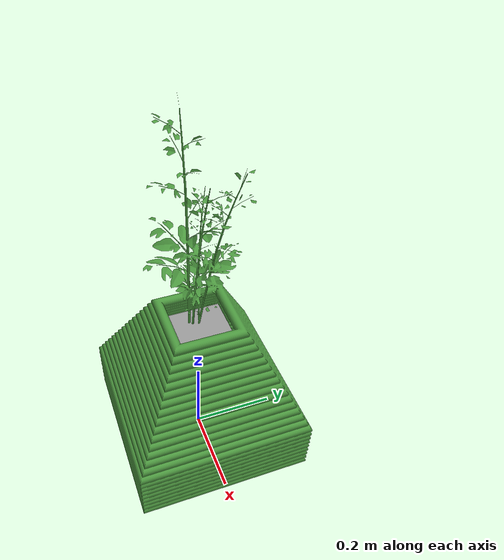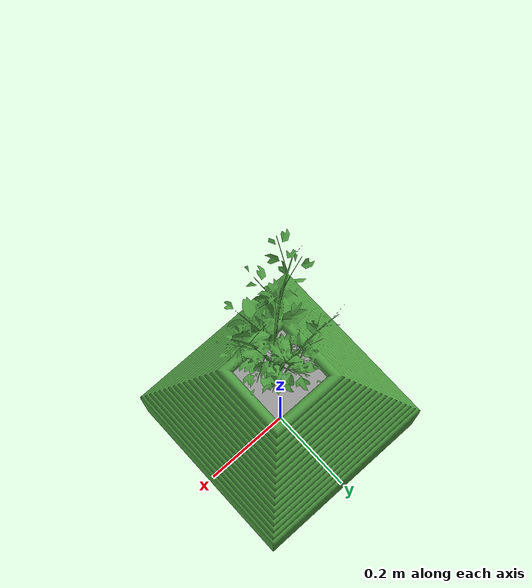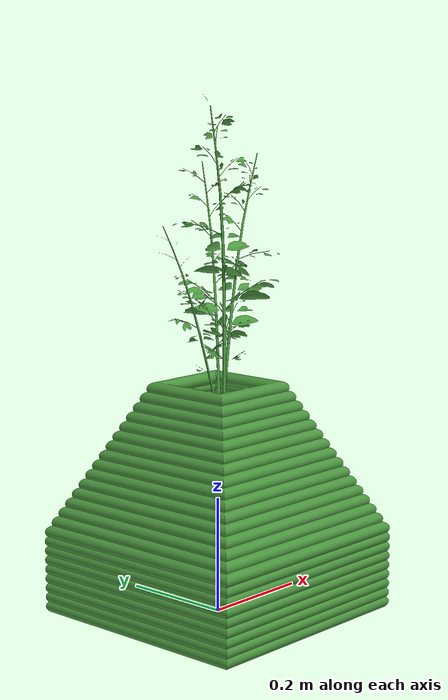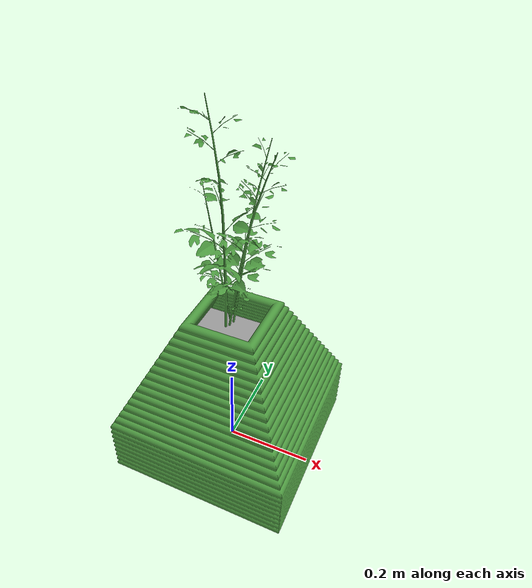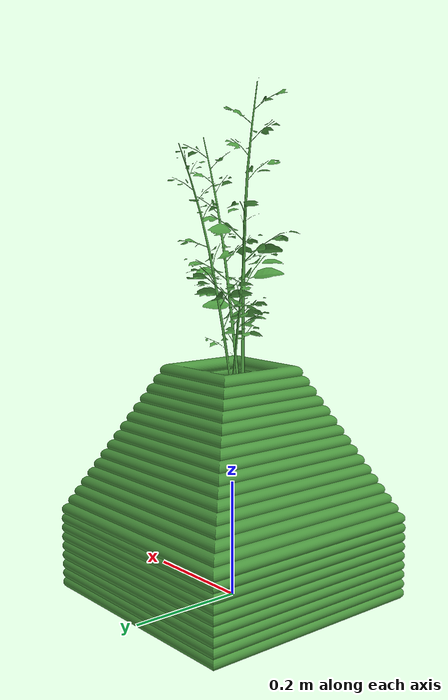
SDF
<?xml version='1.0'?>
<sdf version='1.6'>
  <model name='square_pot'>
    <link name='link_0'>
      <pose frame=''>0 0 0 0 -0 0</pose>
      <inertial>
        <mass>1</mass>
        <inertia>
          <ixx>0.0134051</ixx>
          <ixy>0</ixy>
          <ixz>0</ixz>
          <iyy>0.0134051</iyy>
          <iyz>0</iyz>
          <izz>0.0254102</izz>
        </inertia>
        <pose frame=''>0 0 0 0 -0 0</pose>
      </inertial>
      <gravity>0</gravity>
      <self_collide>0</self_collide>
      <kinematic>0</kinematic>
      <visual name='visual'>
        <pose frame=''>0 0 0 0 -0 0</pose>
        <geometry>
            <mesh>
              <uri>model://square_pot/pot.stl</uri>
              <scale>0.033 0.033 0.033</scale>
            </mesh>
        </geometry>
        <material>
          <lighting>1</lighting>
          <script>
            <uri>file://media/materials/scripts/gazebo.material</uri>
            <name>Gazebo/Grass</name>
          </script>
          <ambient>0.3 0.3 0.3 1</ambient>
          <diffuse>0.7 0.7 0.7 1</diffuse>
          <specular>0.01 0.01 0.01 1</specular>
          <emissive>0 0 0 1</emissive>
          <shader type='vertex'>
            <normal_map>__default__</normal_map>
          </shader>
        </material>
        <cast_shadows>1</cast_shadows>
        <transparency>0</transparency>
      </visual>
      <collision name='collision'>
        <laser_retro>0</laser_retro>
        <max_contacts>10</max_contacts>
        <pose frame=''>0 0 0.25 0 -0 0</pose>
        <geometry>
          <box>
              <size>0.4 0.4 0.4</size>
          </box>
        </geometry>
        <surface>
          <friction>
            <ode>
              <mu>1</mu>
              <mu2>1</mu2>
              <fdir1>0 0 0</fdir1>
              <slip1>0</slip1>
              <slip2>0</slip2>
            </ode>
            <torsional>
              <coefficient>1</coefficient>
              <patch_radius>0</patch_radius>
              <surface_radius>0</surface_radius>
              <use_patch_radius>1</use_patch_radius>
              <ode>
                <slip>0</slip>
              </ode>
            </torsional>
          </friction>
          <bounce>
            <restitution_coefficient>0</restitution_coefficient>
            <threshold>1e+06</threshold>
          </bounce>
          <contact>
            <collide_without_contact>1</collide_without_contact>
            <collide_without_contact_bitmask>1</collide_without_contact_bitmask>
            <collide_bitmask>1</collide_bitmask>
            <ode>
              <soft_cfm>0</soft_cfm>
              <soft_erp>0.2</soft_erp>
              <kp>1e+13</kp>
              <kd>1</kd>
              <max_vel>0.01</max_vel>
              <min_depth>0</min_depth>
            </ode>
            <bullet>
              <split_impulse>1</split_impulse>
              <split_impulse_penetration_threshold>-0.01</split_impulse_penetration_threshold>
              <soft_cfm>0</soft_cfm>
              <soft_erp>0.2</soft_erp>
              <kp>1e+13</kp>
              <kd>1</kd>
            </bullet>
          </contact>
        </surface>
      </collision>
    </link>
    <link name='link_0_0'>
      <pose frame=''>-0.011441 -0.008338 0.308474 0 -0 0</pose>
      <inertial>
        <mass>0.000736153</mass>
        <inertia>
          <ixx>2.11165e-06</ixx>
          <ixy>0</ixy>
          <ixz>0</ixz>
          <iyy>2.64382e-06</iyy>
          <iyz>0</iyz>
          <izz>4.70976e-06</izz>
        </inertia>
        <pose frame=''>0 0 0 0 -0 0</pose>
      </inertial>
      <visual name='visual'>
        <pose frame=''>0 0 0 0 -0 0</pose>
        <geometry>
          <box>
            <size>0.206678 0.18452 0.019291</size>
          </box>
        </geometry>
        <material>
          <lighting>1</lighting>
          <script>
            <uri>file://media/materials/scripts/gazebo.material</uri>
            <name>Gazebo/Grey</name>
          </script>
          <ambient>0.3 0.3 0.3 1</ambient>
          <diffuse>0.7 0.7 0.7 1</diffuse>
          <specular>0.01 0.01 0.01 1</specular>
          <emissive>0 0 0 1</emissive>
        </material>
        <cast_shadows>1</cast_shadows>
        <transparency>0</transparency>
      </visual>
      <collision name='collision'>
        <laser_retro>0</laser_retro>
        <max_contacts>10</max_contacts>
        <pose frame=''>0 0 0 0 -0 0</pose>
        <geometry>
          <box>
            <size>0.206678 0.18452 0.019291</size>
          </box>
        </geometry>
        <surface>
          <friction>
            <ode>
              <mu>1</mu>
              <mu2>1</mu2>
              <fdir1>0 0 0</fdir1>
              <slip1>0</slip1>
              <slip2>0</slip2>
            </ode>
            <torsional>
              <coefficient>1</coefficient>
              <patch_radius>0</patch_radius>
              <surface_radius>0</surface_radius>
              <use_patch_radius>1</use_patch_radius>
              <ode>
                <slip>0</slip>
              </ode>
            </torsional>
          </friction>
          <bounce>
            <restitution_coefficient>0</restitution_coefficient>
            <threshold>1e+06</threshold>
          </bounce>
          <contact>
            <collide_without_contact>0</collide_without_contact>
            <collide_without_contact_bitmask>1</collide_without_contact_bitmask>
            <collide_bitmask>1</collide_bitmask>
            <ode>
              <soft_cfm>0</soft_cfm>
              <soft_erp>0.2</soft_erp>
              <kp>1e+13</kp>
              <kd>1</kd>
              <max_vel>0.01</max_vel>
              <min_depth>0</min_depth>
            </ode>
            <bullet>
              <split_impulse>1</split_impulse>
              <split_impulse_penetration_threshold>-0.01</split_impulse_penetration_threshold>
              <soft_cfm>0</soft_cfm>
              <soft_erp>0.2</soft_erp>
              <kp>1e+13</kp>
              <kd>1</kd>
            </bullet>
          </contact>
        </surface>
      </collision>
    </link>
    <static>1</static>
    <allow_auto_disable>1</allow_auto_disable>
  </model>
</sdf>
